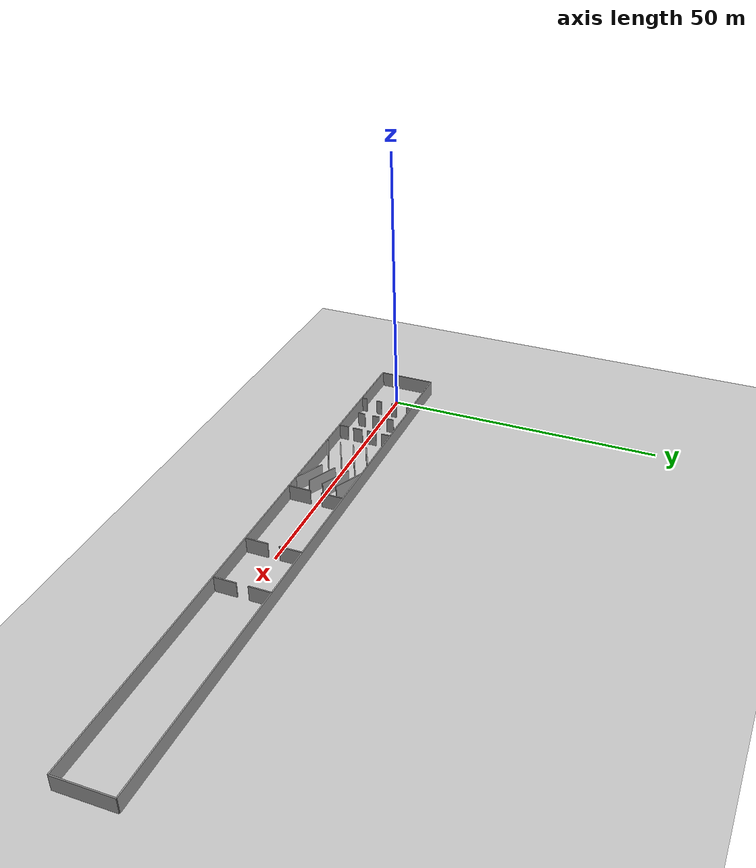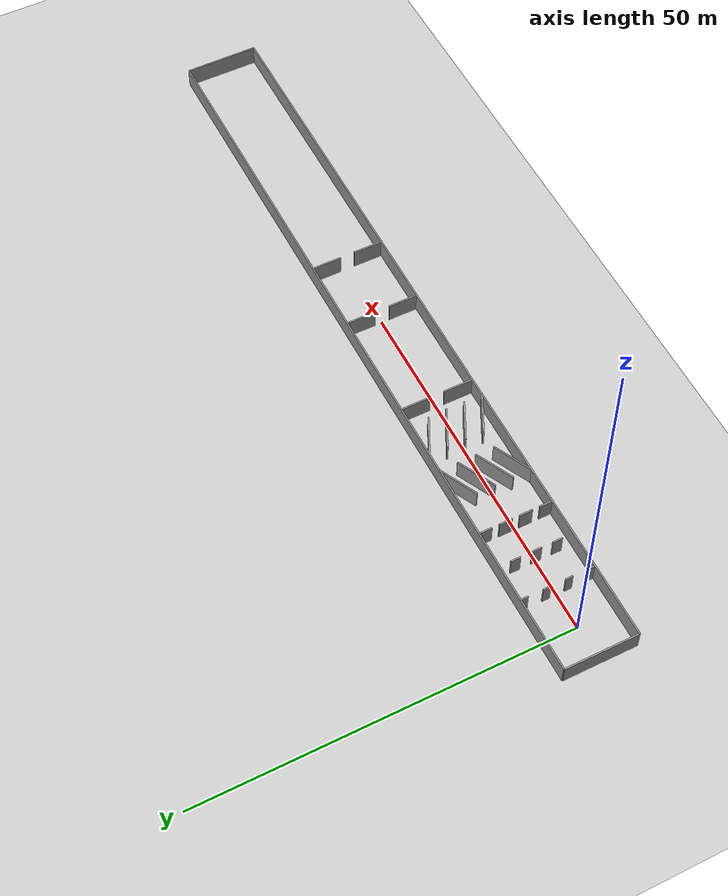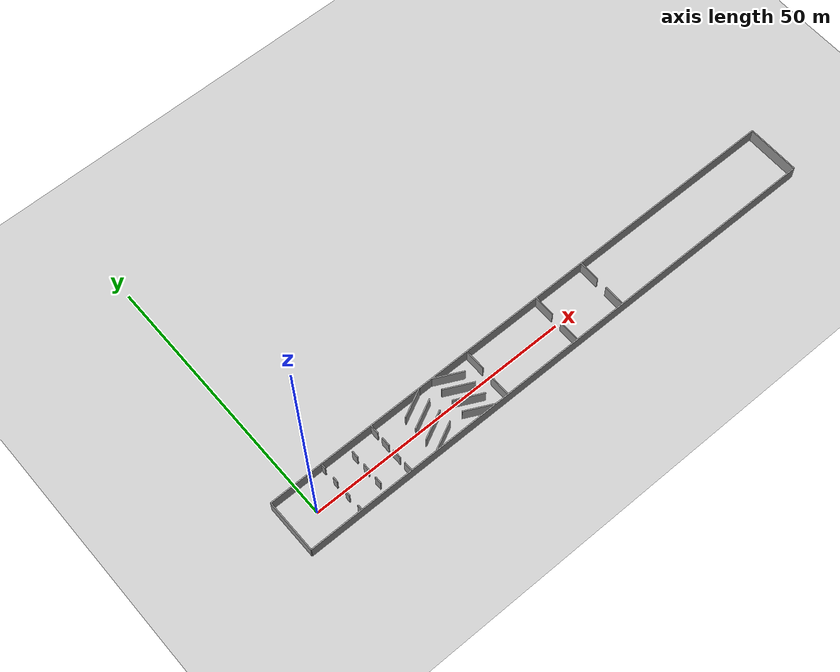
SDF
<?xml version="1.0" ?>
  <!-- this file is auto generated using pedsim_gazebo_plugin pkg -->
  <sdf version="1.5">
    <world name="default">

    <!-- Ground Plane -->
    <include>
      <uri>model://ground_plane</uri>
    </include>

    <include>
      <uri>model://sun</uri>
    </include>

    <model name='grey_wall_1'>
      <static>1</static>
      <link name='link'>
        <pose frame=''>47.5 -5.0  1.4 0 0 0.0</pose>
        <collision name='collision'>
          <geometry>
            <box>
              <size> 105.0 0.2  2.8 </size>
            </box>
          </geometry>
          <max_contacts>10</max_contacts>
          <surface>
            <contact>
              <ode/>
            </contact>
            <bounce/>
            <friction>
              <torsional>
                <ode/>
              </torsional>
              <ode/>
            </friction>
          </surface>
        </collision>
        <visual name='visual'>
          <cast_shadows>0</cast_shadows>
          <geometry>
            <box>
              <size> 105.0 0.2  2.8 </size>
            </box>
          </geometry>
            <material>
              <script>
                <uri>model://grey_wall/materials/scripts</uri>
                <uri>model://grey_wall/materials/textures</uri>
                <name>vrc/grey_wall</name>
              </script>
            </material>
        </visual>
        <self_collide>0</self_collide>
        <enable_wind>0</enable_wind>
        <kinematic>0</kinematic>
      </link>
    </model>

    <model name='grey_wall_2'>
      <static>1</static>
      <link name='link'>
        <pose frame=''>47.5 5.0  1.4 0 0 0.0</pose>
        <collision name='collision'>
          <geometry>
            <box>
              <size> 105.0 0.2  2.8 </size>
            </box>
          </geometry>
          <max_contacts>10</max_contacts>
          <surface>
            <contact>
              <ode/>
            </contact>
            <bounce/>
            <friction>
              <torsional>
                <ode/>
              </torsional>
              <ode/>
            </friction>
          </surface>
        </collision>
        <visual name='visual'>
          <cast_shadows>0</cast_shadows>
          <geometry>
            <box>
              <size> 105.0 0.2  2.8 </size>
            </box>
          </geometry>
            <material>
              <script>
                <uri>model://grey_wall/materials/scripts</uri>
                <uri>model://grey_wall/materials/textures</uri>
                <name>vrc/grey_wall</name>
              </script>
            </material>
        </visual>
        <self_collide>0</self_collide>
        <enable_wind>0</enable_wind>
        <kinematic>0</kinematic>
      </link>
    </model>

    <model name='grey_wall_3'>
      <static>1</static>
      <link name='link'>
        <pose frame=''>-5.0 0.0  1.4 0 0 1.57</pose>
        <collision name='collision'>
          <geometry>
            <box>
              <size> 10.0 0.2  2.8 </size>
            </box>
          </geometry>
          <max_contacts>10</max_contacts>
          <surface>
            <contact>
              <ode/>
            </contact>
            <bounce/>
            <friction>
              <torsional>
                <ode/>
              </torsional>
              <ode/>
            </friction>
          </surface>
        </collision>
        <visual name='visual'>
          <cast_shadows>0</cast_shadows>
          <geometry>
            <box>
              <size> 10.0 0.2  2.8 </size>
            </box>
          </geometry>
            <material>
              <script>
                <uri>model://grey_wall/materials/scripts</uri>
                <uri>model://grey_wall/materials/textures</uri>
                <name>vrc/grey_wall</name>
              </script>
            </material>
        </visual>
        <self_collide>0</self_collide>
        <enable_wind>0</enable_wind>
        <kinematic>0</kinematic>
      </link>
    </model>

    <model name='grey_wall_4'>
      <static>1</static>
      <link name='link'>
        <pose frame=''>100.0 0.0  1.4 0 0 1.57</pose>
        <collision name='collision'>
          <geometry>
            <box>
              <size> 10.0 0.2  2.8 </size>
            </box>
          </geometry>
          <max_contacts>10</max_contacts>
          <surface>
            <contact>
              <ode/>
            </contact>
            <bounce/>
            <friction>
              <torsional>
                <ode/>
              </torsional>
              <ode/>
            </friction>
          </surface>
        </collision>
        <visual name='visual'>
          <cast_shadows>0</cast_shadows>
          <geometry>
            <box>
              <size> 10.0 0.2  2.8 </size>
            </box>
          </geometry>
            <material>
              <script>
                <uri>model://grey_wall/materials/scripts</uri>
                <uri>model://grey_wall/materials/textures</uri>
                <name>vrc/grey_wall</name>
              </script>
            </material>
        </visual>
        <self_collide>0</self_collide>
        <enable_wind>0</enable_wind>
        <kinematic>0</kinematic>
      </link>
    </model>

    <model name='grey_wall_5'>
      <static>1</static>
      <link name='link'>
        <pose frame=''>5.0 -4.5  1.4 0 0 1.57</pose>
        <collision name='collision'>
          <geometry>
            <box>
              <size> 1.0 0.2  2.8 </size>
            </box>
          </geometry>
          <max_contacts>10</max_contacts>
          <surface>
            <contact>
              <ode/>
            </contact>
            <bounce/>
            <friction>
              <torsional>
                <ode/>
              </torsional>
              <ode/>
            </friction>
          </surface>
        </collision>
        <visual name='visual'>
          <cast_shadows>0</cast_shadows>
          <geometry>
            <box>
              <size> 1.0 0.2  2.8 </size>
            </box>
          </geometry>
            <material>
              <script>
                <uri>model://grey_wall/materials/scripts</uri>
                <uri>model://grey_wall/materials/textures</uri>
                <name>vrc/grey_wall</name>
              </script>
            </material>
        </visual>
        <self_collide>0</self_collide>
        <enable_wind>0</enable_wind>
        <kinematic>0</kinematic>
      </link>
    </model>

    <model name='grey_wall_6'>
      <static>1</static>
      <link name='link'>
        <pose frame=''>5.0 -1.5  1.4 0 0 1.57</pose>
        <collision name='collision'>
          <geometry>
            <box>
              <size> 1.0 0.2  2.8 </size>
            </box>
          </geometry>
          <max_contacts>10</max_contacts>
          <surface>
            <contact>
              <ode/>
            </contact>
            <bounce/>
            <friction>
              <torsional>
                <ode/>
              </torsional>
              <ode/>
            </friction>
          </surface>
        </collision>
        <visual name='visual'>
          <cast_shadows>0</cast_shadows>
          <geometry>
            <box>
              <size> 1.0 0.2  2.8 </size>
            </box>
          </geometry>
            <material>
              <script>
                <uri>model://grey_wall/materials/scripts</uri>
                <uri>model://grey_wall/materials/textures</uri>
                <name>vrc/grey_wall</name>
              </script>
            </material>
        </visual>
        <self_collide>0</self_collide>
        <enable_wind>0</enable_wind>
        <kinematic>0</kinematic>
      </link>
    </model>

    <model name='grey_wall_7'>
      <static>1</static>
      <link name='link'>
        <pose frame=''>5.0 1.5  1.4 0 0 1.57</pose>
        <collision name='collision'>
          <geometry>
            <box>
              <size> 1.0 0.2  2.8 </size>
            </box>
          </geometry>
          <max_contacts>10</max_contacts>
          <surface>
            <contact>
              <ode/>
            </contact>
            <bounce/>
            <friction>
              <torsional>
                <ode/>
              </torsional>
              <ode/>
            </friction>
          </surface>
        </collision>
        <visual name='visual'>
          <cast_shadows>0</cast_shadows>
          <geometry>
            <box>
              <size> 1.0 0.2  2.8 </size>
            </box>
          </geometry>
            <material>
              <script>
                <uri>model://grey_wall/materials/scripts</uri>
                <uri>model://grey_wall/materials/textures</uri>
                <name>vrc/grey_wall</name>
              </script>
            </material>
        </visual>
        <self_collide>0</self_collide>
        <enable_wind>0</enable_wind>
        <kinematic>0</kinematic>
      </link>
    </model>

    <model name='grey_wall_8'>
      <static>1</static>
      <link name='link'>
        <pose frame=''>5.0 4.5  1.4 0 0 1.57</pose>
        <collision name='collision'>
          <geometry>
            <box>
              <size> 1.0 0.2  2.8 </size>
            </box>
          </geometry>
          <max_contacts>10</max_contacts>
          <surface>
            <contact>
              <ode/>
            </contact>
            <bounce/>
            <friction>
              <torsional>
                <ode/>
              </torsional>
              <ode/>
            </friction>
          </surface>
        </collision>
        <visual name='visual'>
          <cast_shadows>0</cast_shadows>
          <geometry>
            <box>
              <size> 1.0 0.2  2.8 </size>
            </box>
          </geometry>
            <material>
              <script>
                <uri>model://grey_wall/materials/scripts</uri>
                <uri>model://grey_wall/materials/textures</uri>
                <name>vrc/grey_wall</name>
              </script>
            </material>
        </visual>
        <self_collide>0</self_collide>
        <enable_wind>0</enable_wind>
        <kinematic>0</kinematic>
      </link>
    </model>

    <model name='grey_wall_9'>
      <static>1</static>
      <link name='link'>
        <pose frame=''>10.0 -2.835  1.4 0 0 1.57</pose>
        <collision name='collision'>
          <geometry>
            <box>
              <size> 1.33 0.2  2.8 </size>
            </box>
          </geometry>
          <max_contacts>10</max_contacts>
          <surface>
            <contact>
              <ode/>
            </contact>
            <bounce/>
            <friction>
              <torsional>
                <ode/>
              </torsional>
              <ode/>
            </friction>
          </surface>
        </collision>
        <visual name='visual'>
          <cast_shadows>0</cast_shadows>
          <geometry>
            <box>
              <size> 1.33 0.2  2.8 </size>
            </box>
          </geometry>
            <material>
              <script>
                <uri>model://grey_wall/materials/scripts</uri>
                <uri>model://grey_wall/materials/textures</uri>
                <name>vrc/grey_wall</name>
              </script>
            </material>
        </visual>
        <self_collide>0</self_collide>
        <enable_wind>0</enable_wind>
        <kinematic>0</kinematic>
      </link>
    </model>

    <model name='grey_wall_10'>
      <static>1</static>
      <link name='link'>
        <pose frame=''>10.0 0.0  1.4 0 0 1.57</pose>
        <collision name='collision'>
          <geometry>
            <box>
              <size> 1.34 0.2  2.8 </size>
            </box>
          </geometry>
          <max_contacts>10</max_contacts>
          <surface>
            <contact>
              <ode/>
            </contact>
            <bounce/>
            <friction>
              <torsional>
                <ode/>
              </torsional>
              <ode/>
            </friction>
          </surface>
        </collision>
        <visual name='visual'>
          <cast_shadows>0</cast_shadows>
          <geometry>
            <box>
              <size> 1.34 0.2  2.8 </size>
            </box>
          </geometry>
            <material>
              <script>
                <uri>model://grey_wall/materials/scripts</uri>
                <uri>model://grey_wall/materials/textures</uri>
                <name>vrc/grey_wall</name>
              </script>
            </material>
        </visual>
        <self_collide>0</self_collide>
        <enable_wind>0</enable_wind>
        <kinematic>0</kinematic>
      </link>
    </model>

    <model name='grey_wall_11'>
      <static>1</static>
      <link name='link'>
        <pose frame=''>10.0 2.835  1.4 0 0 1.57</pose>
        <collision name='collision'>
          <geometry>
            <box>
              <size> 1.33 0.2  2.8 </size>
            </box>
          </geometry>
          <max_contacts>10</max_contacts>
          <surface>
            <contact>
              <ode/>
            </contact>
            <bounce/>
            <friction>
              <torsional>
                <ode/>
              </torsional>
              <ode/>
            </friction>
          </surface>
        </collision>
        <visual name='visual'>
          <cast_shadows>0</cast_shadows>
          <geometry>
            <box>
              <size> 1.33 0.2  2.8 </size>
            </box>
          </geometry>
            <material>
              <script>
                <uri>model://grey_wall/materials/scripts</uri>
                <uri>model://grey_wall/materials/textures</uri>
                <name>vrc/grey_wall</name>
              </script>
            </material>
        </visual>
        <self_collide>0</self_collide>
        <enable_wind>0</enable_wind>
        <kinematic>0</kinematic>
      </link>
    </model>

    <model name='grey_wall_12'>
      <static>1</static>
      <link name='link'>
        <pose frame=''>15.0 -4.125  1.4 0 0 1.57</pose>
        <collision name='collision'>
          <geometry>
            <box>
              <size> 1.75 0.2  2.8 </size>
            </box>
          </geometry>
          <max_contacts>10</max_contacts>
          <surface>
            <contact>
              <ode/>
            </contact>
            <bounce/>
            <friction>
              <torsional>
                <ode/>
              </torsional>
              <ode/>
            </friction>
          </surface>
        </collision>
        <visual name='visual'>
          <cast_shadows>0</cast_shadows>
          <geometry>
            <box>
              <size> 1.75 0.2  2.8 </size>
            </box>
          </geometry>
            <material>
              <script>
                <uri>model://grey_wall/materials/scripts</uri>
                <uri>model://grey_wall/materials/textures</uri>
                <name>vrc/grey_wall</name>
              </script>
            </material>
        </visual>
        <self_collide>0</self_collide>
        <enable_wind>0</enable_wind>
        <kinematic>0</kinematic>
      </link>
    </model>

    <model name='grey_wall_13'>
      <static>1</static>
      <link name='link'>
        <pose frame=''>15.0 -1.375  1.4 0 0 1.57</pose>
        <collision name='collision'>
          <geometry>
            <box>
              <size> 1.75 0.2  2.8 </size>
            </box>
          </geometry>
          <max_contacts>10</max_contacts>
          <surface>
            <contact>
              <ode/>
            </contact>
            <bounce/>
            <friction>
              <torsional>
                <ode/>
              </torsional>
              <ode/>
            </friction>
          </surface>
        </collision>
        <visual name='visual'>
          <cast_shadows>0</cast_shadows>
          <geometry>
            <box>
              <size> 1.75 0.2  2.8 </size>
            </box>
          </geometry>
            <material>
              <script>
                <uri>model://grey_wall/materials/scripts</uri>
                <uri>model://grey_wall/materials/textures</uri>
                <name>vrc/grey_wall</name>
              </script>
            </material>
        </visual>
        <self_collide>0</self_collide>
        <enable_wind>0</enable_wind>
        <kinematic>0</kinematic>
      </link>
    </model>

    <model name='grey_wall_14'>
      <static>1</static>
      <link name='link'>
        <pose frame=''>15.0 1.375  1.4 0 0 1.57</pose>
        <collision name='collision'>
          <geometry>
            <box>
              <size> 1.75 0.2  2.8 </size>
            </box>
          </geometry>
          <max_contacts>10</max_contacts>
          <surface>
            <contact>
              <ode/>
            </contact>
            <bounce/>
            <friction>
              <torsional>
                <ode/>
              </torsional>
              <ode/>
            </friction>
          </surface>
        </collision>
        <visual name='visual'>
          <cast_shadows>0</cast_shadows>
          <geometry>
            <box>
              <size> 1.75 0.2  2.8 </size>
            </box>
          </geometry>
            <material>
              <script>
                <uri>model://grey_wall/materials/scripts</uri>
                <uri>model://grey_wall/materials/textures</uri>
                <name>vrc/grey_wall</name>
              </script>
            </material>
        </visual>
        <self_collide>0</self_collide>
        <enable_wind>0</enable_wind>
        <kinematic>0</kinematic>
      </link>
    </model>

    <model name='grey_wall_15'>
      <static>1</static>
      <link name='link'>
        <pose frame=''>15.0 4.125  1.4 0 0 1.57</pose>
        <collision name='collision'>
          <geometry>
            <box>
              <size> 1.75 0.2  2.8 </size>
            </box>
          </geometry>
          <max_contacts>10</max_contacts>
          <surface>
            <contact>
              <ode/>
            </contact>
            <bounce/>
            <friction>
              <torsional>
                <ode/>
              </torsional>
              <ode/>
            </friction>
          </surface>
        </collision>
        <visual name='visual'>
          <cast_shadows>0</cast_shadows>
          <geometry>
            <box>
              <size> 1.75 0.2  2.8 </size>
            </box>
          </geometry>
            <material>
              <script>
                <uri>model://grey_wall/materials/scripts</uri>
                <uri>model://grey_wall/materials/textures</uri>
                <name>vrc/grey_wall</name>
              </script>
            </material>
        </visual>
        <self_collide>0</self_collide>
        <enable_wind>0</enable_wind>
        <kinematic>0</kinematic>
      </link>
    </model>

    <model name='grey_wall_16'>
      <static>1</static>
      <link name='link'>
        <pose frame=''>22.5 -3.75  1.4 0 0 0.463647609001</pose>
        <collision name='collision'>
          <geometry>
            <box>
              <size> 5.59016994375 0.2  2.8 </size>
            </box>
          </geometry>
          <max_contacts>10</max_contacts>
          <surface>
            <contact>
              <ode/>
            </contact>
            <bounce/>
            <friction>
              <torsional>
                <ode/>
              </torsional>
              <ode/>
            </friction>
          </surface>
        </collision>
        <visual name='visual'>
          <cast_shadows>0</cast_shadows>
          <geometry>
            <box>
              <size> 5.59016994375 0.2  2.8 </size>
            </box>
          </geometry>
            <material>
              <script>
                <uri>model://grey_wall/materials/scripts</uri>
                <uri>model://grey_wall/materials/textures</uri>
                <name>vrc/grey_wall</name>
              </script>
            </material>
        </visual>
        <self_collide>0</self_collide>
        <enable_wind>0</enable_wind>
        <kinematic>0</kinematic>
      </link>
    </model>

    <model name='grey_wall_17'>
      <static>1</static>
      <link name='link'>
        <pose frame=''>22.5 -1.25  1.4 0 0 0.463647609001</pose>
        <collision name='collision'>
          <geometry>
            <box>
              <size> 5.59016994375 0.2  2.8 </size>
            </box>
          </geometry>
          <max_contacts>10</max_contacts>
          <surface>
            <contact>
              <ode/>
            </contact>
            <bounce/>
            <friction>
              <torsional>
                <ode/>
              </torsional>
              <ode/>
            </friction>
          </surface>
        </collision>
        <visual name='visual'>
          <cast_shadows>0</cast_shadows>
          <geometry>
            <box>
              <size> 5.59016994375 0.2  2.8 </size>
            </box>
          </geometry>
            <material>
              <script>
                <uri>model://grey_wall/materials/scripts</uri>
                <uri>model://grey_wall/materials/textures</uri>
                <name>vrc/grey_wall</name>
              </script>
            </material>
        </visual>
        <self_collide>0</self_collide>
        <enable_wind>0</enable_wind>
        <kinematic>0</kinematic>
      </link>
    </model>

    <model name='grey_wall_18'>
      <static>1</static>
      <link name='link'>
        <pose frame=''>22.5 1.25  1.4 0 0 0.463647609001</pose>
        <collision name='collision'>
          <geometry>
            <box>
              <size> 5.59016994375 0.2  2.8 </size>
            </box>
          </geometry>
          <max_contacts>10</max_contacts>
          <surface>
            <contact>
              <ode/>
            </contact>
            <bounce/>
            <friction>
              <torsional>
                <ode/>
              </torsional>
              <ode/>
            </friction>
          </surface>
        </collision>
        <visual name='visual'>
          <cast_shadows>0</cast_shadows>
          <geometry>
            <box>
              <size> 5.59016994375 0.2  2.8 </size>
            </box>
          </geometry>
            <material>
              <script>
                <uri>model://grey_wall/materials/scripts</uri>
                <uri>model://grey_wall/materials/textures</uri>
                <name>vrc/grey_wall</name>
              </script>
            </material>
        </visual>
        <self_collide>0</self_collide>
        <enable_wind>0</enable_wind>
        <kinematic>0</kinematic>
      </link>
    </model>

    <model name='grey_wall_19'>
      <static>1</static>
      <link name='link'>
        <pose frame=''>22.5 3.75  1.4 0 0 0.463647609001</pose>
        <collision name='collision'>
          <geometry>
            <box>
              <size> 5.59016994375 0.2  2.8 </size>
            </box>
          </geometry>
          <max_contacts>10</max_contacts>
          <surface>
            <contact>
              <ode/>
            </contact>
            <bounce/>
            <friction>
              <torsional>
                <ode/>
              </torsional>
              <ode/>
            </friction>
          </surface>
        </collision>
        <visual name='visual'>
          <cast_shadows>0</cast_shadows>
          <geometry>
            <box>
              <size> 5.59016994375 0.2  2.8 </size>
            </box>
          </geometry>
            <material>
              <script>
                <uri>model://grey_wall/materials/scripts</uri>
                <uri>model://grey_wall/materials/textures</uri>
                <name>vrc/grey_wall</name>
              </script>
            </material>
        </visual>
        <self_collide>0</self_collide>
        <enable_wind>0</enable_wind>
        <kinematic>0</kinematic>
      </link>
    </model>

    <model name='grey_wall_20'>
      <static>1</static>
      <link name='link'>
        <pose frame=''>30.0 -3.75  1.4 0 0 -0.463647609001</pose>
        <collision name='collision'>
          <geometry>
            <box>
              <size> 5.59016994375 0.2  2.8 </size>
            </box>
          </geometry>
          <max_contacts>10</max_contacts>
          <surface>
            <contact>
              <ode/>
            </contact>
            <bounce/>
            <friction>
              <torsional>
                <ode/>
              </torsional>
              <ode/>
            </friction>
          </surface>
        </collision>
        <visual name='visual'>
          <cast_shadows>0</cast_shadows>
          <geometry>
            <box>
              <size> 5.59016994375 0.2  2.8 </size>
            </box>
          </geometry>
            <material>
              <script>
                <uri>model://grey_wall/materials/scripts</uri>
                <uri>model://grey_wall/materials/textures</uri>
                <name>vrc/grey_wall</name>
              </script>
            </material>
        </visual>
        <self_collide>0</self_collide>
        <enable_wind>0</enable_wind>
        <kinematic>0</kinematic>
      </link>
    </model>

    <model name='grey_wall_21'>
      <static>1</static>
      <link name='link'>
        <pose frame=''>30.0 -1.25  1.4 0 0 -0.463647609001</pose>
        <collision name='collision'>
          <geometry>
            <box>
              <size> 5.59016994375 0.2  2.8 </size>
            </box>
          </geometry>
          <max_contacts>10</max_contacts>
          <surface>
            <contact>
              <ode/>
            </contact>
            <bounce/>
            <friction>
              <torsional>
                <ode/>
              </torsional>
              <ode/>
            </friction>
          </surface>
        </collision>
        <visual name='visual'>
          <cast_shadows>0</cast_shadows>
          <geometry>
            <box>
              <size> 5.59016994375 0.2  2.8 </size>
            </box>
          </geometry>
            <material>
              <script>
                <uri>model://grey_wall/materials/scripts</uri>
                <uri>model://grey_wall/materials/textures</uri>
                <name>vrc/grey_wall</name>
              </script>
            </material>
        </visual>
        <self_collide>0</self_collide>
        <enable_wind>0</enable_wind>
        <kinematic>0</kinematic>
      </link>
    </model>

    <model name='grey_wall_22'>
      <static>1</static>
      <link name='link'>
        <pose frame=''>30.0 1.25  1.4 0 0 -0.463647609001</pose>
        <collision name='collision'>
          <geometry>
            <box>
              <size> 5.59016994375 0.2  2.8 </size>
            </box>
          </geometry>
          <max_contacts>10</max_contacts>
          <surface>
            <contact>
              <ode/>
            </contact>
            <bounce/>
            <friction>
              <torsional>
                <ode/>
              </torsional>
              <ode/>
            </friction>
          </surface>
        </collision>
        <visual name='visual'>
          <cast_shadows>0</cast_shadows>
          <geometry>
            <box>
              <size> 5.59016994375 0.2  2.8 </size>
            </box>
          </geometry>
            <material>
              <script>
                <uri>model://grey_wall/materials/scripts</uri>
                <uri>model://grey_wall/materials/textures</uri>
                <name>vrc/grey_wall</name>
              </script>
            </material>
        </visual>
        <self_collide>0</self_collide>
        <enable_wind>0</enable_wind>
        <kinematic>0</kinematic>
      </link>
    </model>

    <model name='grey_wall_23'>
      <static>1</static>
      <link name='link'>
        <pose frame=''>30.0 3.75  1.4 0 0 -0.463647609001</pose>
        <collision name='collision'>
          <geometry>
            <box>
              <size> 5.59016994375 0.2  2.8 </size>
            </box>
          </geometry>
          <max_contacts>10</max_contacts>
          <surface>
            <contact>
              <ode/>
            </contact>
            <bounce/>
            <friction>
              <torsional>
                <ode/>
              </torsional>
              <ode/>
            </friction>
          </surface>
        </collision>
        <visual name='visual'>
          <cast_shadows>0</cast_shadows>
          <geometry>
            <box>
              <size> 5.59016994375 0.2  2.8 </size>
            </box>
          </geometry>
            <material>
              <script>
                <uri>model://grey_wall/materials/scripts</uri>
                <uri>model://grey_wall/materials/textures</uri>
                <name>vrc/grey_wall</name>
              </script>
            </material>
        </visual>
        <self_collide>0</self_collide>
        <enable_wind>0</enable_wind>
        <kinematic>0</kinematic>
      </link>
    </model>

    <model name='grey_wall_24'>
      <static>1</static>
      <link name='link'>
        <pose frame=''>30.0 -3.75  1.4 0 0 -0.463647609001</pose>
        <collision name='collision'>
          <geometry>
            <box>
              <size> 5.59016994375 0.2  2.8 </size>
            </box>
          </geometry>
          <max_contacts>10</max_contacts>
          <surface>
            <contact>
              <ode/>
            </contact>
            <bounce/>
            <friction>
              <torsional>
                <ode/>
              </torsional>
              <ode/>
            </friction>
          </surface>
        </collision>
        <visual name='visual'>
          <cast_shadows>0</cast_shadows>
          <geometry>
            <box>
              <size> 5.59016994375 0.2  2.8 </size>
            </box>
          </geometry>
            <material>
              <script>
                <uri>model://grey_wall/materials/scripts</uri>
                <uri>model://grey_wall/materials/textures</uri>
                <name>vrc/grey_wall</name>
              </script>
            </material>
        </visual>
        <self_collide>0</self_collide>
        <enable_wind>0</enable_wind>
        <kinematic>0</kinematic>
      </link>
    </model>

    <model name='grey_wall_25'>
      <static>1</static>
      <link name='link'>
        <pose frame=''>30.0 -1.25  1.4 0 0 -0.463647609001</pose>
        <collision name='collision'>
          <geometry>
            <box>
              <size> 5.59016994375 0.2  2.8 </size>
            </box>
          </geometry>
          <max_contacts>10</max_contacts>
          <surface>
            <contact>
              <ode/>
            </contact>
            <bounce/>
            <friction>
              <torsional>
                <ode/>
              </torsional>
              <ode/>
            </friction>
          </surface>
        </collision>
        <visual name='visual'>
          <cast_shadows>0</cast_shadows>
          <geometry>
            <box>
              <size> 5.59016994375 0.2  2.8 </size>
            </box>
          </geometry>
            <material>
              <script>
                <uri>model://grey_wall/materials/scripts</uri>
                <uri>model://grey_wall/materials/textures</uri>
                <name>vrc/grey_wall</name>
              </script>
            </material>
        </visual>
        <self_collide>0</self_collide>
        <enable_wind>0</enable_wind>
        <kinematic>0</kinematic>
      </link>
    </model>

    <model name='grey_wall_26'>
      <static>1</static>
      <link name='link'>
        <pose frame=''>30.0 1.25  1.4 0 0 -0.463647609001</pose>
        <collision name='collision'>
          <geometry>
            <box>
              <size> 5.59016994375 0.2  2.8 </size>
            </box>
          </geometry>
          <max_contacts>10</max_contacts>
          <surface>
            <contact>
              <ode/>
            </contact>
            <bounce/>
            <friction>
              <torsional>
                <ode/>
              </torsional>
              <ode/>
            </friction>
          </surface>
        </collision>
        <visual name='visual'>
          <cast_shadows>0</cast_shadows>
          <geometry>
            <box>
              <size> 5.59016994375 0.2  2.8 </size>
            </box>
          </geometry>
            <material>
              <script>
                <uri>model://grey_wall/materials/scripts</uri>
                <uri>model://grey_wall/materials/textures</uri>
                <name>vrc/grey_wall</name>
              </script>
            </material>
        </visual>
        <self_collide>0</self_collide>
        <enable_wind>0</enable_wind>
        <kinematic>0</kinematic>
      </link>
    </model>

    <model name='grey_wall_27'>
      <static>1</static>
      <link name='link'>
        <pose frame=''>30.0 3.75  1.4 0 0 -0.463647609001</pose>
        <collision name='collision'>
          <geometry>
            <box>
              <size> 5.59016994375 0.2  2.8 </size>
            </box>
          </geometry>
          <max_contacts>10</max_contacts>
          <surface>
            <contact>
              <ode/>
            </contact>
            <bounce/>
            <friction>
              <torsional>
                <ode/>
              </torsional>
              <ode/>
            </friction>
          </surface>
        </collision>
        <visual name='visual'>
          <cast_shadows>0</cast_shadows>
          <geometry>
            <box>
              <size> 5.59016994375 0.2  2.8 </size>
            </box>
          </geometry>
            <material>
              <script>
                <uri>model://grey_wall/materials/scripts</uri>
                <uri>model://grey_wall/materials/textures</uri>
                <name>vrc/grey_wall</name>
              </script>
            </material>
        </visual>
        <self_collide>0</self_collide>
        <enable_wind>0</enable_wind>
        <kinematic>0</kinematic>
      </link>
    </model>

    <model name='grey_wall_28'>
      <static>1</static>
      <link name='link'>
        <pose frame=''>35.0 -3.0  1.4 0 0 1.57</pose>
        <collision name='collision'>
          <geometry>
            <box>
              <size> 4.0 0.2  2.8 </size>
            </box>
          </geometry>
          <max_contacts>10</max_contacts>
          <surface>
            <contact>
              <ode/>
            </contact>
            <bounce/>
            <friction>
              <torsional>
                <ode/>
              </torsional>
              <ode/>
            </friction>
          </surface>
        </collision>
        <visual name='visual'>
          <cast_shadows>0</cast_shadows>
          <geometry>
            <box>
              <size> 4.0 0.2  2.8 </size>
            </box>
          </geometry>
            <material>
              <script>
                <uri>model://grey_wall/materials/scripts</uri>
                <uri>model://grey_wall/materials/textures</uri>
                <name>vrc/grey_wall</name>
              </script>
            </material>
        </visual>
        <self_collide>0</self_collide>
        <enable_wind>0</enable_wind>
        <kinematic>0</kinematic>
      </link>
    </model>

    <model name='grey_wall_29'>
      <static>1</static>
      <link name='link'>
        <pose frame=''>35.0 3.0  1.4 0 0 1.57</pose>
        <collision name='collision'>
          <geometry>
            <box>
              <size> 4.0 0.2  2.8 </size>
            </box>
          </geometry>
          <max_contacts>10</max_contacts>
          <surface>
            <contact>
              <ode/>
            </contact>
            <bounce/>
            <friction>
              <torsional>
                <ode/>
              </torsional>
              <ode/>
            </friction>
          </surface>
        </collision>
        <visual name='visual'>
          <cast_shadows>0</cast_shadows>
          <geometry>
            <box>
              <size> 4.0 0.2  2.8 </size>
            </box>
          </geometry>
            <material>
              <script>
                <uri>model://grey_wall/materials/scripts</uri>
                <uri>model://grey_wall/materials/textures</uri>
                <name>vrc/grey_wall</name>
              </script>
            </material>
        </visual>
        <self_collide>0</self_collide>
        <enable_wind>0</enable_wind>
        <kinematic>0</kinematic>
      </link>
    </model>

    <model name='grey_wall_30'>
      <static>1</static>
      <link name='link'>
        <pose frame=''>50.0 -3.0  1.4 0 0 1.57</pose>
        <collision name='collision'>
          <geometry>
            <box>
              <size> 4.0 0.2  2.8 </size>
            </box>
          </geometry>
          <max_contacts>10</max_contacts>
          <surface>
            <contact>
              <ode/>
            </contact>
            <bounce/>
            <friction>
              <torsional>
                <ode/>
              </torsional>
              <ode/>
            </friction>
          </surface>
        </collision>
        <visual name='visual'>
          <cast_shadows>0</cast_shadows>
          <geometry>
            <box>
              <size> 4.0 0.2  2.8 </size>
            </box>
          </geometry>
            <material>
              <script>
                <uri>model://grey_wall/materials/scripts</uri>
                <uri>model://grey_wall/materials/textures</uri>
                <name>vrc/grey_wall</name>
              </script>
            </material>
        </visual>
        <self_collide>0</self_collide>
        <enable_wind>0</enable_wind>
        <kinematic>0</kinematic>
      </link>
    </model>

    <model name='grey_wall_31'>
      <static>1</static>
      <link name='link'>
        <pose frame=''>50.0 3.0  1.4 0 0 1.57</pose>
        <collision name='collision'>
          <geometry>
            <box>
              <size> 4.0 0.2  2.8 </size>
            </box>
          </geometry>
          <max_contacts>10</max_contacts>
          <surface>
            <contact>
              <ode/>
            </contact>
            <bounce/>
            <friction>
              <torsional>
                <ode/>
              </torsional>
              <ode/>
            </friction>
          </surface>
        </collision>
        <visual name='visual'>
          <cast_shadows>0</cast_shadows>
          <geometry>
            <box>
              <size> 4.0 0.2  2.8 </size>
            </box>
          </geometry>
            <material>
              <script>
                <uri>model://grey_wall/materials/scripts</uri>
                <uri>model://grey_wall/materials/textures</uri>
                <name>vrc/grey_wall</name>
              </script>
            </material>
        </visual>
        <self_collide>0</self_collide>
        <enable_wind>0</enable_wind>
        <kinematic>0</kinematic>
      </link>
    </model>

    <model name='grey_wall_32'>
      <static>1</static>
      <link name='link'>
        <pose frame=''>60.0 -3.0  1.4 0 0 1.57</pose>
        <collision name='collision'>
          <geometry>
            <box>
              <size> 4.0 0.2  2.8 </size>
            </box>
          </geometry>
          <max_contacts>10</max_contacts>
          <surface>
            <contact>
              <ode/>
            </contact>
            <bounce/>
            <friction>
              <torsional>
                <ode/>
              </torsional>
              <ode/>
            </friction>
          </surface>
        </collision>
        <visual name='visual'>
          <cast_shadows>0</cast_shadows>
          <geometry>
            <box>
              <size> 4.0 0.2  2.8 </size>
            </box>
          </geometry>
            <material>
              <script>
                <uri>model://grey_wall/materials/scripts</uri>
                <uri>model://grey_wall/materials/textures</uri>
                <name>vrc/grey_wall</name>
              </script>
            </material>
        </visual>
        <self_collide>0</self_collide>
        <enable_wind>0</enable_wind>
        <kinematic>0</kinematic>
      </link>
    </model>

    <model name='grey_wall_33'>
      <static>1</static>
      <link name='link'>
        <pose frame=''>60.0 3.0  1.4 0 0 1.57</pose>
        <collision name='collision'>
          <geometry>
            <box>
              <size> 4.0 0.2  2.8 </size>
            </box>
          </geometry>
          <max_contacts>10</max_contacts>
          <surface>
            <contact>
              <ode/>
            </contact>
            <bounce/>
            <friction>
              <torsional>
                <ode/>
              </torsional>
              <ode/>
            </friction>
          </surface>
        </collision>
        <visual name='visual'>
          <cast_shadows>0</cast_shadows>
          <geometry>
            <box>
              <size> 4.0 0.2  2.8 </size>
            </box>
          </geometry>
            <material>
              <script>
                <uri>model://grey_wall/materials/scripts</uri>
                <uri>model://grey_wall/materials/textures</uri>
                <name>vrc/grey_wall</name>
              </script>
            </material>
        </visual>
        <self_collide>0</self_collide>
        <enable_wind>0</enable_wind>
        <kinematic>0</kinematic>
      </link>
    </model>

    <plugin name="ActorPosesPlugin" filename="libActorPosesPlugin.so">
    </plugin>

  </world>
</sdf>
